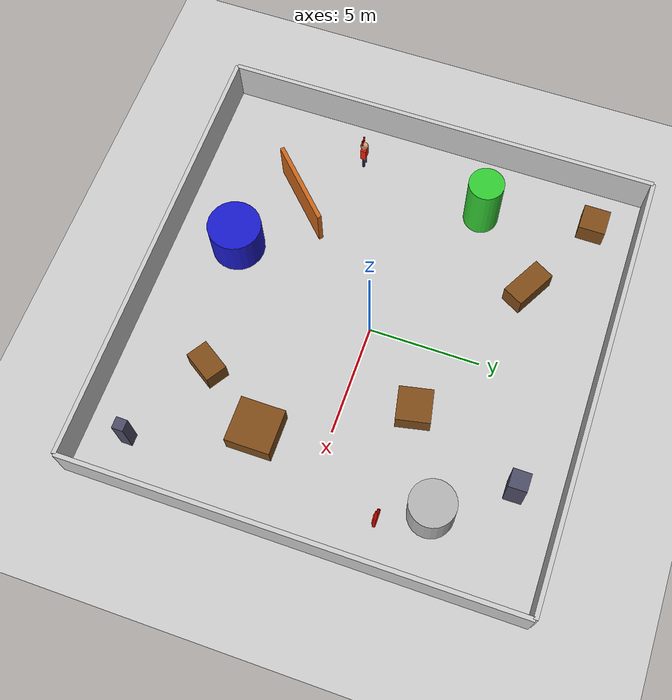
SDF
<?xml version="1.0" ?>
<sdf version="1.6">
  <world name="smart_factory_world">
    <!-- Gazebo 모델 좌표를 ROS2 /gazebo/model_states 로 발행한다.
         event_detector.py의 mock 화재/안전모 위반 판정이 이 토픽을 사용한다. -->
    <plugin name="gazebo_ros_state" filename="libgazebo_ros_state.so">
      <ros><namespace>/gazebo</namespace></ros>
      <update_rate>10.0</update_rate>
    </plugin>
    <physics name="default_physics" default="true" type="ode">
      <max_step_size>0.001</max_step_size>
      <real_time_factor>1.0</real_time_factor>
      <real_time_update_rate>1000</real_time_update_rate>
    </physics>

    <!-- Sun -->
    <include>
      <uri>model://sun</uri>
    </include>

    <!-- Ground Plane -->
    <include>
      <uri>model://ground_plane</uri>
    </include>

    <!-- Factory Walls (Outer boundary 20x20)           -->
    <model name="wall_north">
      <static>true</static>
      <link name="link">
        <pose>0 10 1 0 0 0</pose>
        <collision name="collision"><geometry><box><size>20 0.2 2</size></box></geometry></collision>
        <visual name="visual"><geometry><box><size>20 0.2 2</size></box></geometry>
          <material><ambient>0.8 0.8 0.8 1</ambient><diffuse>0.8 0.8 0.8 1</diffuse></material>
        </visual>
      </link>
    </model>

    <model name="wall_south">
      <static>true</static>
      <link name="link">
        <pose>0 -10 1 0 0 0</pose>
        <collision name="collision"><geometry><box><size>20 0.2 2</size></box></geometry></collision>
        <visual name="visual"><geometry><box><size>20 0.2 2</size></box></geometry>
          <material><ambient>0.8 0.8 0.8 1</ambient><diffuse>0.8 0.8 0.8 1</diffuse></material>
        </visual>
      </link>
    </model>

    <model name="wall_east">
      <static>true</static>
      <link name="link">
        <pose>10 0 1 0 0 1.5708</pose>
        <collision name="collision"><geometry><box><size>20 0.2 2</size></box></geometry></collision>
        <visual name="visual"><geometry><box><size>20 0.2 2</size></box></geometry>
          <material><ambient>0.8 0.8 0.8 1</ambient><diffuse>0.8 0.8 0.8 1</diffuse></material>
        </visual>
      </link>
    </model>

    <model name="wall_west">
      <static>true</static>
      <link name="link">
        <pose>-10 0 1 0 0 1.5708</pose>
        <collision name="collision"><geometry><box><size>20 0.2 2</size></box></geometry></collision>
        <visual name="visual"><geometry><box><size>20 0.2 2</size></box></geometry>
          <material><ambient>0.8 0.8 0.8 1</ambient><diffuse>0.8 0.8 0.8 1</diffuse></material>
        </visual>
      </link>
    </model>

    <!-- Scattered Obstacles (Boxes, Cylinders, Pillars)-->
    <!-- Robot starts at (0, 0, 0), so keep center clear-->

    <!-- Quadrant 1 (Top Right: x>0, y>0) -->
    <model name="obstacle_box_1">
      <static>true</static><pose>3 3 0.5 0 0 0.2</pose>
      <link name="link">
        <collision name="collision"><geometry><box><size>1.5 1.5 1</size></box></geometry></collision>
        <visual name="visual"><geometry><box><size>1.5 1.5 1</size></box></geometry>
          <material><ambient>0.5 0.3 0.1 1</ambient><diffuse>0.5 0.3 0.1 1</diffuse></material>
        </visual>
      </link>
    </model>

    <model name="obstacle_cyl_1">
      <static>true</static><pose>7 5 1 0 0 0</pose>
      <link name="link">
        <collision name="collision"><geometry><cylinder><radius>1.0</radius><length>2.0</length></cylinder></geometry></collision>
        <visual name="visual"><geometry><cylinder><radius>1.0</radius><length>2.0</length></cylinder></geometry>
          <material><ambient>0.7 0.7 0.7 1</ambient><diffuse>0.7 0.7 0.7 1</diffuse></material>
        </visual>
      </link>
    </model>

    <model name="obstacle_pillar_1">
      <static>true</static><pose>5 8 1 0 0 0</pose>
      <link name="link">
        <collision name="collision"><geometry><box><size>0.8 0.8 2</size></box></geometry></collision>
        <visual name="visual"><geometry><box><size>0.8 0.8 2</size></box></geometry>
          <material><ambient>0.3 0.3 0.4 1</ambient><diffuse>0.3 0.3 0.4 1</diffuse></material>
        </visual>
      </link>
    </model>

    <!-- Quadrant 2 (Top Left: x<0, y>0) -->
    <model name="obstacle_box_2">
      <static>true</static><pose>-4 6 0.5 0 0 -0.5</pose>
      <link name="link">
        <collision name="collision"><geometry><box><size>2 1 1</size></box></geometry></collision>
        <visual name="visual"><geometry><box><size>2 1 1</size></box></geometry>
          <material><ambient>0.5 0.3 0.1 1</ambient><diffuse>0.5 0.3 0.1 1</diffuse></material>
        </visual>
      </link>
    </model>

    <model name="obstacle_cyl_2">
      <static>true</static><pose>-7 3 1.5 0 0 0</pose>
      <link name="link">
        <collision name="collision"><geometry><cylinder><radius>0.8</radius><length>3.0</length></cylinder></geometry></collision>
        <visual name="visual"><geometry><cylinder><radius>0.8</radius><length>3.0</length></cylinder></geometry>
          <material><ambient>0.2 0.8 0.2 1</ambient><diffuse>0.2 0.8 0.2 1</diffuse></material>
        </visual>
      </link>
    </model>

    <model name="obstacle_box_3">
      <static>true</static><pose>-8 8 0.5 0 0 0</pose>
      <link name="link">
        <collision name="collision"><geometry><box><size>1.2 1.2 1</size></box></geometry></collision>
        <visual name="visual"><geometry><box><size>1.2 1.2 1</size></box></geometry>
          <material><ambient>0.5 0.3 0.1 1</ambient><diffuse>0.5 0.3 0.1 1</diffuse></material>
        </visual>
      </link>
    </model>

    <!-- Quadrant 3 (Bottom Left: x<0, y<0) -->
    <model name="obstacle_wall_segment">
      <static>true</static><pose>-5 -5 1 0 0 0.785</pose>
      <link name="link">
        <collision name="collision"><geometry><box><size>4 0.2 2</size></box></geometry></collision>
        <visual name="visual"><geometry><box><size>4 0.2 2</size></box></geometry>
          <material><ambient>0.8 0.4 0.1 1</ambient><diffuse>0.8 0.4 0.1 1</diffuse></material>
        </visual>
      </link>
    </model>

    <model name="obstacle_cyl_3">
      <static>true</static><pose>-2 -7 1 0 0 0</pose>
      <link name="link">
        <collision name="collision"><geometry><cylinder><radius>1.2</radius><length>2.0</length></cylinder></geometry></collision>
        <visual name="visual"><geometry><cylinder><radius>1.2</radius><length>2.0</length></cylinder></geometry>
          <material><ambient>0.1 0.1 0.8 1</ambient><diffuse>0.1 0.1 0.8 1</diffuse></material>
        </visual>
      </link>
    </model>

    <!-- Quadrant 4 (Bottom Right: x>0, y<0) -->
    <model name="obstacle_box_4">
      <static>true</static><pose>6 -3 0.5 0 0 0</pose>
      <link name="link">
        <collision name="collision"><geometry><box><size>2 2 1</size></box></geometry></collision>
        <visual name="visual"><geometry><box><size>2 2 1</size></box></geometry>
          <material><ambient>0.5 0.3 0.1 1</ambient><diffuse>0.5 0.3 0.1 1</diffuse></material>
        </visual>
      </link>
    </model>

    <model name="obstacle_box_5">
      <static>true</static><pose>4 -6 0.5 0 0 1.0</pose>
      <link name="link">
        <collision name="collision"><geometry><box><size>1.5 1 1</size></box></geometry></collision>
        <visual name="visual"><geometry><box><size>1.5 1 1</size></box></geometry>
          <material><ambient>0.5 0.3 0.1 1</ambient><diffuse>0.5 0.3 0.1 1</diffuse></material>
        </visual>
      </link>
    </model>

    <model name="obstacle_pillar_2">
      <static>true</static><pose>8 -8 1 0 0 0</pose>
      <link name="link">
        <collision name="collision"><geometry><box><size>0.5 0.5 2</size></box></geometry></collision>
        <visual name="visual"><geometry><box><size>0.5 0.5 2</size></box></geometry>
          <material><ambient>0.3 0.3 0.4 1</ambient><diffuse>0.3 0.3 0.4 1</diffuse></material>
        </visual>
      </link>
    </model>

    <!-- Custom Events                                  -->
    <!-- Custom Event Target: Fire Event -->
    <model name="fire_event_target">
      <pose>8.0 3.0 0.5 0 0 0</pose>
      <static>true</static>
      <include>
        <uri>model://fire_event</uri>
      </include>
    </model>

    <!-- Custom Event Target: Helmet Violation Event -->
    <model name="helmet_violation_event_target">
      <pose>-8.0 -3.0 0.0 0 0 0</pose>
      <static>true</static>
      <include>
        <uri>model://helmet_violation_event</uri>
      </include>
    </model>

    <!-- Scene lighting / shadows settings -->
    <scene>
      <ambient>0.4 0.4 0.4 1.0</ambient>
      <background>0.7 0.7 0.7 1.0</background>
      <shadows>true</shadows>
    </scene>
  </world>
</sdf>

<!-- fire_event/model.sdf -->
<sdf version="1.6">
  <model name="fire_event">
    <static>true</static>
    <link name="flame">
      <!-- Visual-only: a detected fire must not become a physical obstacle. -->
      <visual name="outer_red_flame">
        <geometry><mesh><uri>model://fire_event/meshes/flame.obj</uri><scale>0.9 0.9 0.9</scale></mesh></geometry>
        <material><ambient>1 0.03 0.01 1</ambient><diffuse>1 0.03 0.01 1</diffuse><emissive>0.9 0.02 0 1</emissive></material>
      </visual>
      <visual name="middle_orange_flame">
        <pose>0 -0.075 0.02 0 0 0</pose>
        <geometry><mesh><uri>model://fire_event/meshes/flame.obj</uri><scale>0.65 0.65 0.65</scale></mesh></geometry>
        <material><ambient>1 0.28 0 1</ambient><diffuse>1 0.28 0 1</diffuse><emissive>1 0.2 0 1</emissive></material>
      </visual>
      <visual name="inner_yellow_flame">
        <pose>0 -0.11 0.02 0 0 0</pose>
        <geometry><mesh><uri>model://fire_event/meshes/flame.obj</uri><scale>0.38 0.38 0.38</scale></mesh></geometry>
        <material><ambient>1 0.75 0.02 1</ambient><diffuse>1 0.75 0.02 1</diffuse><emissive>1 0.65 0 1</emissive></material>
      </visual>
    </link>
  </model>
</sdf>

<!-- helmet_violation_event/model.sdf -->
<sdf version="1.6">
  <model name="helmet_violation_event">
    <static>true</static>
    <link name="worker_no_helmet">
      <!-- Red body + bare head + red X: helmet violation. -->
      <visual name="torso">
        <pose>0 0 1.05 0 0 0</pose>
        <geometry><box><size>0.42 0.25 0.65</size></box></geometry>
        <material><ambient>0.95 0.12 0.03 1</ambient><diffuse>0.95 0.12 0.03 1</diffuse></material>
      </visual>
      <visual name="head">
        <pose>0 0 1.53 0 0 0</pose>
        <geometry><sphere><radius>0.18</radius></sphere></geometry>
        <material><ambient>0.86 0.62 0.46 1</ambient><diffuse>0.86 0.62 0.46 1</diffuse></material>
      </visual>
      <visual name="left_leg">
        <pose>-0.12 0 0.42 0 0 0</pose>
        <geometry><cylinder><radius>0.07</radius><length>0.8</length></cylinder></geometry>
        <material><ambient>0.1 0.12 0.18 1</ambient><diffuse>0.1 0.12 0.18 1</diffuse></material>
      </visual>
      <visual name="right_leg">
        <pose>0.12 0 0.42 0 0 0</pose>
        <geometry><cylinder><radius>0.07</radius><length>0.8</length></cylinder></geometry>
        <material><ambient>0.1 0.12 0.18 1</ambient><diffuse>0.1 0.12 0.18 1</diffuse></material>
      </visual>
      <visual name="no_helmet_x1">
        <pose>0 -0.05 1.9 0 0.78 0</pose>
        <geometry><box><size>0.42 0.06 0.06</size></box></geometry>
        <material><ambient>1 0 0 1</ambient><diffuse>1 0 0 1</diffuse><emissive>0.6 0 0 1</emissive></material>
      </visual>
      <visual name="no_helmet_x2">
        <pose>0 -0.05 1.9 0 -0.78 0</pose>
        <geometry><box><size>0.42 0.06 0.06</size></box></geometry>
        <material><ambient>1 0 0 1</ambient><diffuse>1 0 0 1</diffuse><emissive>0.6 0 0 1</emissive></material>
      </visual>
    </link>
  </model>
</sdf>
